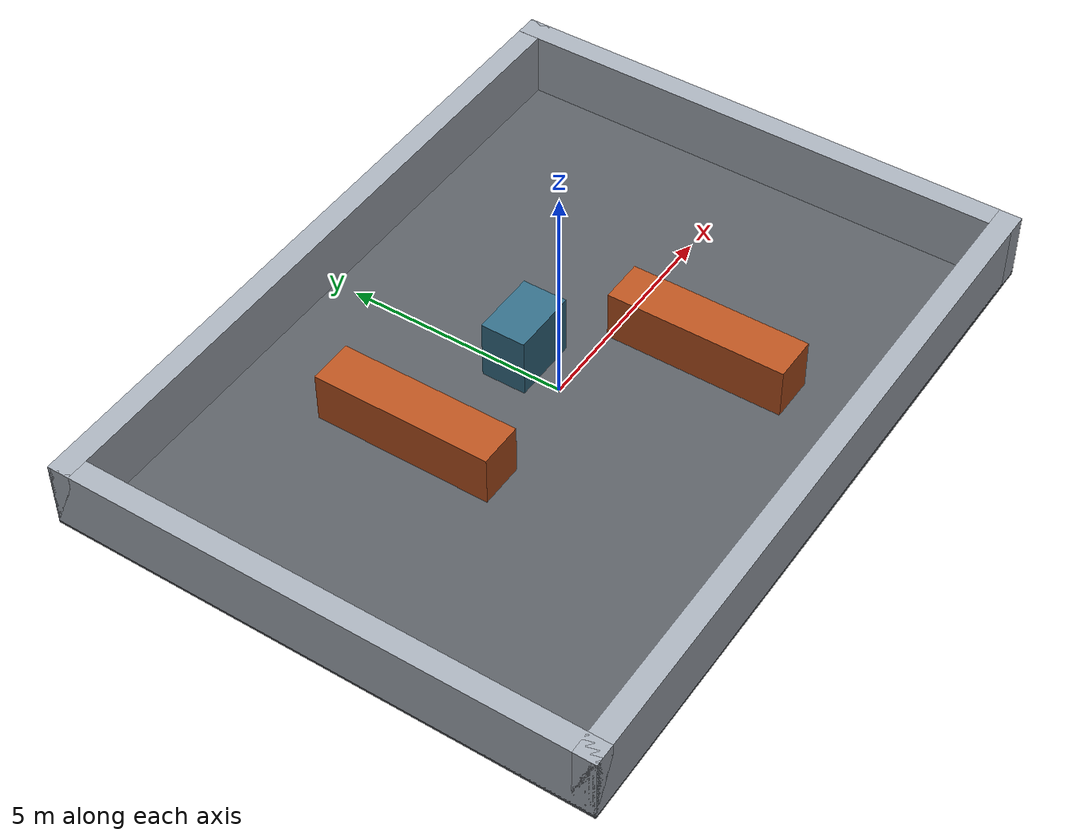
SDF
<?xml version="1.0"?>
<sdf version="1.9">
  <world name="pipeline_inspection">
    <physics name="physics" type="ignored">
      <max_step_size>0.001</max_step_size>
      <real_time_factor>1.0</real_time_factor>
    </physics>

    <plugin filename="gz-sim-physics-system" name="gz::sim::systems::Physics"/>
    <plugin filename="gz-sim-user-commands-system" name="gz::sim::systems::UserCommands"/>
    <plugin filename="gz-sim-scene-broadcaster-system" name="gz::sim::systems::SceneBroadcaster"/>
    <plugin filename="gz-sim-sensors-system" name="gz::sim::systems::Sensors">
      <render_engine>ogre2</render_engine>
    </plugin>
    <plugin filename="gz-sim-imu-system" name="gz::sim::systems::Imu"/>

    <gravity>0 0 -9.81</gravity>
    <magnetic_field>5.5645e-6 22.8758e-6 -42.3884e-6</magnetic_field>
    <atmosphere type="adiabatic"/>
    <scene>
      <ambient>0.55 0.55 0.55 1</ambient>
      <background>0.08 0.10 0.14 1</background>
      <shadows>true</shadows>
    </scene>

    <light name="sun" type="directional">
      <cast_shadows>true</cast_shadows>
      <pose>0 0 10 0 0 0</pose>
      <diffuse>0.9 0.9 0.9 1</diffuse>
      <specular>0.2 0.2 0.2 1</specular>
      <attenuation><range>1000</range><constant>0.9</constant></attenuation>
      <direction>-0.3 0.2 -0.9</direction>
    </light>

    <model name="floor">
      <static>true</static>
      <link name="link">
        <collision name="collision">
          <geometry><box><size>16 12 0.1</size></box></geometry>
        </collision>
        <visual name="visual">
          <geometry><box><size>16 12 0.1</size></box></geometry>
          <material><ambient>0.28 0.30 0.32 1</ambient><diffuse>0.35 0.37 0.39 1</diffuse></material>
        </visual>
      </link>
    </model>

    <!-- 四周墙体：地图范围为 x[-8,8], y[-6,6]。 -->
    <model name="north_wall"><static>true</static><pose>0 5.75 0.75 0 0 0</pose><link name="link"><collision name="collision"><geometry><box><size>16 0.5 1.5</size></box></geometry></collision><visual name="visual"><geometry><box><size>16 0.5 1.5</size></box></geometry><material><diffuse>0.65 0.68 0.72 1</diffuse></material></visual></link></model>
    <model name="south_wall"><static>true</static><pose>0 -5.75 0.75 0 0 0</pose><link name="link"><collision name="collision"><geometry><box><size>16 0.5 1.5</size></box></geometry></collision><visual name="visual"><geometry><box><size>16 0.5 1.5</size></box></geometry><material><diffuse>0.65 0.68 0.72 1</diffuse></material></visual></link></model>
    <model name="east_wall"><static>true</static><pose>7.75 0 0.75 0 0 0</pose><link name="link"><collision name="collision"><geometry><box><size>0.5 12 1.5</size></box></geometry></collision><visual name="visual"><geometry><box><size>0.5 12 1.5</size></box></geometry><material><diffuse>0.65 0.68 0.72 1</diffuse></material></visual></link></model>
    <model name="west_wall"><static>true</static><pose>-7.75 0 0.75 0 0 0</pose><link name="link"><collision name="collision"><geometry><box><size>0.5 12 1.5</size></box></geometry></collision><visual name="visual"><geometry><box><size>0.5 12 1.5</size></box></geometry><material><diffuse>0.65 0.68 0.72 1</diffuse></material></visual></link></model>

    <!-- 与预制地图对应的三组管道/设备障碍物。 -->
    <model name="pipe_rack_a">
      <static>true</static><pose>-2.75 1.5 0.6 0 0 0</pose>
      <link name="link">
        <collision name="collision"><geometry><box><size>1.0 4.0 1.2</size></box></geometry></collision>
        <visual name="visual"><geometry><box><size>1.0 4.0 1.2</size></box></geometry><material><diffuse>0.72 0.32 0.12 1</diffuse></material></visual>
      </link>
    </model>
    <model name="pipe_rack_b">
      <static>true</static><pose>2.25 -2.0 0.6 0 0 0</pose>
      <link name="link">
        <collision name="collision"><geometry><box><size>1.0 4.0 1.2</size></box></geometry></collision>
        <visual name="visual"><geometry><box><size>1.0 4.0 1.2</size></box></geometry><material><diffuse>0.72 0.32 0.12 1</diffuse></material></visual>
      </link>
    </model>
    <model name="control_cabinet">
      <static>true</static><pose>0.25 1.0 0.7 0 0 0</pose>
      <link name="link">
        <collision name="collision"><geometry><box><size>1.5 1.0 1.4</size></box></geometry></collision>
        <visual name="visual"><geometry><box><size>1.5 1.0 1.4</size></box></geometry><material><diffuse>0.20 0.42 0.52 1</diffuse></material></visual>
      </link>
    </model>

  </world>
</sdf>
